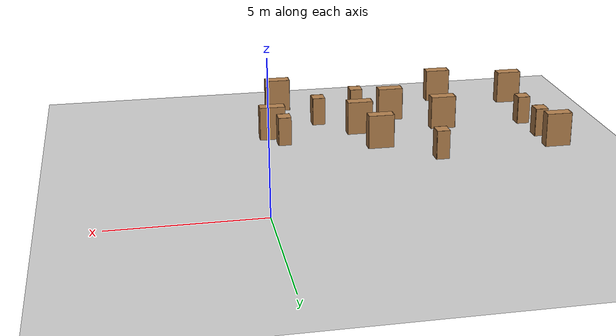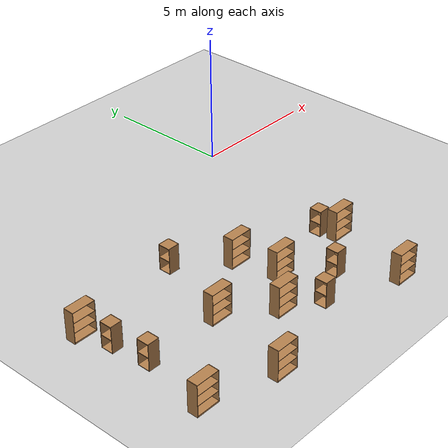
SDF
<sdf version="1.6">
 <world name="default">
  <model name="ground_plane">
   <static>1</static>
   <link name="link">
    <collision name="collision">
     <geometry><plane><normal>0 0 1</normal><size>100 100</size></plane></geometry>
     <surface><friction><ode><mu>100</mu><mu2>50</mu2></ode></friction></surface>
    </collision>
    <visual name="visual">
     <cast_shadows>0</cast_shadows>
     <geometry><plane><normal>0 0 1</normal><size>100 100</size></plane></geometry>
     <material>
      <script><uri>file://media/materials/scripts/gazebo.material</uri><name>Gazebo/Grey</name></script>
     </material>
    </visual>
   </link>
  </model>
  <model name="cabinet_28">
   <static>1</static>
   <link name="cabinet_bottom_plate">
    <inertial>
     <pose>0 0 -1 0 -0 0</pose>
     <inertia><ixx>2.05</ixx><ixy>0</ixy><ixz>0</ixz><iyy>2.05</iyy><iyz>0</iyz><izz>2.05</izz></inertia>
     <mass>25</mass>
    </inertial>
    <collision name="cabinet_bottom_plate_geom">
     <pose>0 0 0.01 0 -0 0</pose>
     <geometry><box><size>0.45 0.45 0.02</size></box></geometry>
    </collision>
    <visual name="cabinet_bottom_plate_geom_visual">
     <pose>0 0 0.01 0 -0 0</pose>
     <geometry><box><size>0.45 0.45 0.02</size></box></geometry>
     <material>
      <script><uri>file://media/materials/scripts/gazebo.material</uri><name>Gazebo/Wood</name></script>
     </material>
    </visual>
    <collision name="cabinet_bottom_plate_geom_cabinet_back_plate">
     <pose>0.235 0 0.51 0 -0 0</pose>
     <geometry><box><size>0.02 0.45 1.02</size></box></geometry>
    </collision>
    <visual name="cabinet_bottom_plate_geom_cabinet_back_plate_visual">
     <pose>0.235 0 0.51 0 -0 0</pose>
     <geometry><box><size>0.02 0.45 1.02</size></box></geometry>
     <material>
      <script><uri>file://media/materials/scripts/gazebo.material</uri><name>Gazebo/Wood</name></script>
     </material>
    </visual>
    <collision name="cabinet_bottom_plate_geom_cabinet_left_plate">
     <pose>0 0.235 0.51 0 -0 0</pose>
     <geometry><box><size>0.45 0.02 1.02</size></box></geometry>
    </collision>
    <visual name="cabinet_bottom_plate_geom_cabinet_left_plate_visual">
     <pose>0 0.235 0.51 0 -0 0</pose>
     <geometry><box><size>0.45 0.02 1.02</size></box></geometry>
     <material>
      <script><uri>file://media/materials/scripts/gazebo.material</uri><name>Gazebo/Wood</name></script>
     </material>
    </visual>
    <collision name="cabinet_bottom_plate_geom_cabinet_middle_plate">
     <pose>0 0 0.51 0 -0 0</pose>
     <geometry><box><size>0.45 0.45 0.02</size></box></geometry>
    </collision>
    <visual name="cabinet_bottom_plate_geom_cabinet_middle_plate_visual">
     <pose>0 0 0.51 0 -0 0</pose>
     <geometry><box><size>0.45 0.45 0.02</size></box></geometry>
     <material>
      <script><uri>file://media/materials/scripts/gazebo.material</uri><name>Gazebo/Wood</name></script>
     </material>
    </visual>
    <collision name="cabinet_bottom_plate_geom_cabinet_right_plate">
     <pose>0 -0.235 0.51 0 -0 0</pose>
     <geometry><box><size>0.45 0.02 1.02</size></box></geometry>
    </collision>
    <visual name="cabinet_bottom_plate_geom_cabinet_right_plate_visual">
     <pose>0 -0.235 0.51 0 -0 0</pose>
     <geometry><box><size>0.45 0.02 1.02</size></box></geometry>
     <material>
      <script><uri>file://media/materials/scripts/gazebo.material</uri><name>Gazebo/Wood</name></script>
     </material>
    </visual>
    <collision name="cabinet_bottom_plate_geom_cabinet_top_plate">
     <pose>0 0 1.01 0 -0 0</pose>
     <geometry><box><size>0.45 0.45 0.02</size></box></geometry>
    </collision>
    <visual name="cabinet_bottom_plate_geom_cabinet_top_plate_visual">
     <pose>0 0 1.01 0 -0 0</pose>
     <geometry><box><size>0.45 0.45 0.02</size></box></geometry>
     <material>
      <script><uri>file://media/materials/scripts/gazebo.material</uri><name>Gazebo/Wood</name></script>
     </material>
    </visual>
   </link>
   <pose>-6.4679 -3.99655 0 0 -0 0</pose>
  </model>
  <model name="cabinet_32">
   <static>1</static>
   <link name="cabinet_bottom_plate">
    <inertial>
     <pose>0 0 -1 0 -0 0</pose>
     <inertia><ixx>2.05</ixx><ixy>0</ixy><ixz>0</ixz><iyy>2.05</iyy><iyz>0</iyz><izz>2.05</izz></inertia>
     <mass>25</mass>
    </inertial>
    <collision name="cabinet_bottom_plate_geom">
     <pose>0 0 0.01 0 -0 0</pose>
     <geometry><box><size>0.45 0.45 0.02</size></box></geometry>
    </collision>
    <visual name="cabinet_bottom_plate_geom_visual">
     <pose>0 0 0.01 0 -0 0</pose>
     <geometry><box><size>0.45 0.45 0.02</size></box></geometry>
     <material>
      <script><uri>file://media/materials/scripts/gazebo.material</uri><name>Gazebo/Wood</name></script>
     </material>
    </visual>
    <collision name="cabinet_bottom_plate_geom_cabinet_back_plate">
     <pose>0.235 0 0.51 0 -0 0</pose>
     <geometry><box><size>0.02 0.45 1.02</size></box></geometry>
    </collision>
    <visual name="cabinet_bottom_plate_geom_cabinet_back_plate_visual">
     <pose>0.235 0 0.51 0 -0 0</pose>
     <geometry><box><size>0.02 0.45 1.02</size></box></geometry>
     <material>
      <script><uri>file://media/materials/scripts/gazebo.material</uri><name>Gazebo/Wood</name></script>
     </material>
    </visual>
    <collision name="cabinet_bottom_plate_geom_cabinet_left_plate">
     <pose>0 0.235 0.51 0 -0 0</pose>
     <geometry><box><size>0.45 0.02 1.02</size></box></geometry>
    </collision>
    <visual name="cabinet_bottom_plate_geom_cabinet_left_plate_visual">
     <pose>0 0.235 0.51 0 -0 0</pose>
     <geometry><box><size>0.45 0.02 1.02</size></box></geometry>
     <material>
      <script><uri>file://media/materials/scripts/gazebo.material</uri><name>Gazebo/Wood</name></script>
     </material>
    </visual>
    <collision name="cabinet_bottom_plate_geom_cabinet_middle_plate">
     <pose>0 0 0.51 0 -0 0</pose>
     <geometry><box><size>0.45 0.45 0.02</size></box></geometry>
    </collision>
    <visual name="cabinet_bottom_plate_geom_cabinet_middle_plate_visual">
     <pose>0 0 0.51 0 -0 0</pose>
     <geometry><box><size>0.45 0.45 0.02</size></box></geometry>
     <material>
      <script><uri>file://media/materials/scripts/gazebo.material</uri><name>Gazebo/Wood</name></script>
     </material>
    </visual>
    <collision name="cabinet_bottom_plate_geom_cabinet_right_plate">
     <pose>0 -0.235 0.51 0 -0 0</pose>
     <geometry><box><size>0.45 0.02 1.02</size></box></geometry>
    </collision>
    <visual name="cabinet_bottom_plate_geom_cabinet_right_plate_visual">
     <pose>0 -0.235 0.51 0 -0 0</pose>
     <geometry><box><size>0.45 0.02 1.02</size></box></geometry>
     <material>
      <script><uri>file://media/materials/scripts/gazebo.material</uri><name>Gazebo/Wood</name></script>
     </material>
    </visual>
    <collision name="cabinet_bottom_plate_geom_cabinet_top_plate">
     <pose>0 0 1.01 0 -0 0</pose>
     <geometry><box><size>0.45 0.45 0.02</size></box></geometry>
    </collision>
    <visual name="cabinet_bottom_plate_geom_cabinet_top_plate_visual">
     <pose>0 0 1.01 0 -0 0</pose>
     <geometry><box><size>0.45 0.45 0.02</size></box></geometry>
     <material>
      <script><uri>file://media/materials/scripts/gazebo.material</uri><name>Gazebo/Wood</name></script>
     </material>
    </visual>
   </link>
   <pose>-1.36728 -6.36946 0 0 -0 0</pose>
  </model>
  <model name="bookshelf_32">
   <static>1</static>
   <link name="link">
    <inertial><mass>1</mass></inertial>
    <collision name="back">
     <pose>0 0.005 0.6 0 -0 0</pose>
     <geometry><box><size>0.9 0.01 1.2</size></box></geometry>
    </collision>
    <visual name="visual1">
     <pose>0 0.005 0.6 0 -0 0</pose>
     <geometry><box><size>0.9 0.01 1.2</size></box></geometry>
     <material>
      <script><uri>file://media/materials/scripts/gazebo.material</uri><name>Gazebo/Wood</name></script>
     </material>
    </visual>
    <collision name="left_side">
     <pose>0.45 -0.195 0.6 0 -0 0</pose>
     <geometry><box><size>0.02 0.4 1.2</size></box></geometry>
    </collision>
    <visual name="visual2">
     <pose>0.45 -0.195 0.6 0 -0 0</pose>
     <geometry><box><size>0.02 0.4 1.2</size></box></geometry>
     <material>
      <script><uri>file://media/materials/scripts/gazebo.material</uri><name>Gazebo/Wood</name></script>
     </material>
    </visual>
    <collision name="right_side">
     <pose>-0.45 -0.195 0.6 0 -0 0</pose>
     <geometry><box><size>0.02 0.4 1.2</size></box></geometry>
    </collision>
    <visual name="visual3">
     <pose>-0.45 -0.195 0.6 0 -0 0</pose>
     <geometry><box><size>0.02 0.4 1.2</size></box></geometry>
     <material>
      <script><uri>file://media/materials/scripts/gazebo.material</uri><name>Gazebo/Wood</name></script>
     </material>
    </visual>
    <collision name="bottom">
     <pose>0 -0.195 0.03 0 -0 0</pose>
     <geometry><box><size>0.88 0.4 0.06</size></box></geometry>
    </collision>
    <visual name="visual4">
     <pose>0 -0.195 0.03 0 -0 0</pose>
     <geometry><box><size>0.88 0.4 0.06</size></box></geometry>
     <material>
      <script><uri>file://media/materials/scripts/gazebo.material</uri><name>Gazebo/Wood</name></script>
     </material>
    </visual>
    <collision name="top">
     <pose>0 -0.195 1.19 0 -0 0</pose>
     <geometry><box><size>0.88 0.4 0.02</size></box></geometry>
    </collision>
    <visual name="visual5">
     <pose>0 -0.195 1.19 0 -0 0</pose>
     <geometry><box><size>0.88 0.4 0.02</size></box></geometry>
     <material>
      <script><uri>file://media/materials/scripts/gazebo.material</uri><name>Gazebo/Wood</name></script>
     </material>
    </visual>
    <collision name="low_shelf">
     <pose>0 -0.195 0.43 0 -0 0</pose>
     <geometry><box><size>0.88 0.4 0.02</size></box></geometry>
    </collision>
    <visual name="visual6">
     <pose>0 -0.195 0.43 0 -0 0</pose>
     <geometry><box><size>0.88 0.4 0.02</size></box></geometry>
     <material>
      <script><uri>file://media/materials/scripts/gazebo.material</uri><name>Gazebo/Wood</name></script>
     </material>
    </visual>
    <collision name="high_shelf">
     <pose>0 -0.195 0.8 0 -0 0</pose>
     <geometry><box><size>0.88 0.4 0.02</size></box></geometry>
    </collision>
    <visual name="visual7">
     <pose>0 -0.195 0.8 0 -0 0</pose>
     <geometry><box><size>0.88 0.4 0.02</size></box></geometry>
     <material>
      <script><uri>file://media/materials/scripts/gazebo.material</uri><name>Gazebo/Wood</name></script>
     </material>
    </visual>
   </link>
   <pose>-4.6365 -5.22484 0 0 -0 0</pose>
  </model>
  <model name="bookshelf_33">
   <static>1</static>
   <link name="link">
    <inertial><mass>1</mass></inertial>
    <collision name="back">
     <pose>0 0.005 0.6 0 -0 0</pose>
     <geometry><box><size>0.9 0.01 1.2</size></box></geometry>
    </collision>
    <visual name="visual1">
     <pose>0 0.005 0.6 0 -0 0</pose>
     <geometry><box><size>0.9 0.01 1.2</size></box></geometry>
     <material>
      <script><uri>file://media/materials/scripts/gazebo.material</uri><name>Gazebo/Wood</name></script>
     </material>
    </visual>
    <collision name="left_side">
     <pose>0.45 -0.195 0.6 0 -0 0</pose>
     <geometry><box><size>0.02 0.4 1.2</size></box></geometry>
    </collision>
    <visual name="visual2">
     <pose>0.45 -0.195 0.6 0 -0 0</pose>
     <geometry><box><size>0.02 0.4 1.2</size></box></geometry>
     <material>
      <script><uri>file://media/materials/scripts/gazebo.material</uri><name>Gazebo/Wood</name></script>
     </material>
    </visual>
    <collision name="right_side">
     <pose>-0.45 -0.195 0.6 0 -0 0</pose>
     <geometry><box><size>0.02 0.4 1.2</size></box></geometry>
    </collision>
    <visual name="visual3">
     <pose>-0.45 -0.195 0.6 0 -0 0</pose>
     <geometry><box><size>0.02 0.4 1.2</size></box></geometry>
     <material>
      <script><uri>file://media/materials/scripts/gazebo.material</uri><name>Gazebo/Wood</name></script>
     </material>
    </visual>
    <collision name="bottom">
     <pose>0 -0.195 0.03 0 -0 0</pose>
     <geometry><box><size>0.88 0.4 0.06</size></box></geometry>
    </collision>
    <visual name="visual4">
     <pose>0 -0.195 0.03 0 -0 0</pose>
     <geometry><box><size>0.88 0.4 0.06</size></box></geometry>
     <material>
      <script><uri>file://media/materials/scripts/gazebo.material</uri><name>Gazebo/Wood</name></script>
     </material>
    </visual>
    <collision name="top">
     <pose>0 -0.195 1.19 0 -0 0</pose>
     <geometry><box><size>0.88 0.4 0.02</size></box></geometry>
    </collision>
    <visual name="visual5">
     <pose>0 -0.195 1.19 0 -0 0</pose>
     <geometry><box><size>0.88 0.4 0.02</size></box></geometry>
     <material>
      <script><uri>file://media/materials/scripts/gazebo.material</uri><name>Gazebo/Wood</name></script>
     </material>
    </visual>
    <collision name="low_shelf">
     <pose>0 -0.195 0.43 0 -0 0</pose>
     <geometry><box><size>0.88 0.4 0.02</size></box></geometry>
    </collision>
    <visual name="visual6">
     <pose>0 -0.195 0.43 0 -0 0</pose>
     <geometry><box><size>0.88 0.4 0.02</size></box></geometry>
     <material>
      <script><uri>file://media/materials/scripts/gazebo.material</uri><name>Gazebo/Wood</name></script>
     </material>
    </visual>
    <collision name="high_shelf">
     <pose>0 -0.195 0.8 0 -0 0</pose>
     <geometry><box><size>0.88 0.4 0.02</size></box></geometry>
    </collision>
    <visual name="visual7">
     <pose>0 -0.195 0.8 0 -0 0</pose>
     <geometry><box><size>0.88 0.4 0.02</size></box></geometry>
     <material>
      <script><uri>file://media/materials/scripts/gazebo.material</uri><name>Gazebo/Wood</name></script>
     </material>
    </visual>
   </link>
   <pose>-7.32868 -6.81235 0 0 -0 0</pose>
  </model>
  <model name="bookshelf_34">
   <static>1</static>
   <link name="link">
    <inertial><mass>1</mass></inertial>
    <collision name="back">
     <pose>0 0.005 0.6 0 -0 0</pose>
     <geometry><box><size>0.9 0.01 1.2</size></box></geometry>
    </collision>
    <visual name="visual1">
     <pose>0 0.005 0.6 0 -0 0</pose>
     <geometry><box><size>0.9 0.01 1.2</size></box></geometry>
     <material>
      <script><uri>file://media/materials/scripts/gazebo.material</uri><name>Gazebo/Wood</name></script>
     </material>
    </visual>
    <collision name="left_side">
     <pose>0.45 -0.195 0.6 0 -0 0</pose>
     <geometry><box><size>0.02 0.4 1.2</size></box></geometry>
    </collision>
    <visual name="visual2">
     <pose>0.45 -0.195 0.6 0 -0 0</pose>
     <geometry><box><size>0.02 0.4 1.2</size></box></geometry>
     <material>
      <script><uri>file://media/materials/scripts/gazebo.material</uri><name>Gazebo/Wood</name></script>
     </material>
    </visual>
    <collision name="right_side">
     <pose>-0.45 -0.195 0.6 0 -0 0</pose>
     <geometry><box><size>0.02 0.4 1.2</size></box></geometry>
    </collision>
    <visual name="visual3">
     <pose>-0.45 -0.195 0.6 0 -0 0</pose>
     <geometry><box><size>0.02 0.4 1.2</size></box></geometry>
     <material>
      <script><uri>file://media/materials/scripts/gazebo.material</uri><name>Gazebo/Wood</name></script>
     </material>
    </visual>
    <collision name="bottom">
     <pose>0 -0.195 0.03 0 -0 0</pose>
     <geometry><box><size>0.88 0.4 0.06</size></box></geometry>
    </collision>
    <visual name="visual4">
     <pose>0 -0.195 0.03 0 -0 0</pose>
     <geometry><box><size>0.88 0.4 0.06</size></box></geometry>
     <material>
      <script><uri>file://media/materials/scripts/gazebo.material</uri><name>Gazebo/Wood</name></script>
     </material>
    </visual>
    <collision name="top">
     <pose>0 -0.195 1.19 0 -0 0</pose>
     <geometry><box><size>0.88 0.4 0.02</size></box></geometry>
    </collision>
    <visual name="visual5">
     <pose>0 -0.195 1.19 0 -0 0</pose>
     <geometry><box><size>0.88 0.4 0.02</size></box></geometry>
     <material>
      <script><uri>file://media/materials/scripts/gazebo.material</uri><name>Gazebo/Wood</name></script>
     </material>
    </visual>
    <collision name="low_shelf">
     <pose>0 -0.195 0.43 0 -0 0</pose>
     <geometry><box><size>0.88 0.4 0.02</size></box></geometry>
    </collision>
    <visual name="visual6">
     <pose>0 -0.195 0.43 0 -0 0</pose>
     <geometry><box><size>0.88 0.4 0.02</size></box></geometry>
     <material>
      <script><uri>file://media/materials/scripts/gazebo.material</uri><name>Gazebo/Wood</name></script>
     </material>
    </visual>
    <collision name="high_shelf">
     <pose>0 -0.195 0.8 0 -0 0</pose>
     <geometry><box><size>0.88 0.4 0.02</size></box></geometry>
    </collision>
    <visual name="visual7">
     <pose>0 -0.195 0.8 0 -0 0</pose>
     <geometry><box><size>0.88 0.4 0.02</size></box></geometry>
     <material>
      <script><uri>file://media/materials/scripts/gazebo.material</uri><name>Gazebo/Wood</name></script>
     </material>
    </visual>
   </link>
   <pose>-5.64832 -8.11821 0 0 -0 0</pose>
  </model>
  <model name="bookshelf_35">
   <static>1</static>
   <link name="link">
    <inertial><mass>1</mass></inertial>
    <collision name="back">
     <pose>0 0.005 0.6 0 -0 0</pose>
     <geometry><box><size>0.9 0.01 1.2</size></box></geometry>
    </collision>
    <visual name="visual1">
     <pose>0 0.005 0.6 0 -0 0</pose>
     <geometry><box><size>0.9 0.01 1.2</size></box></geometry>
     <material>
      <script><uri>file://media/materials/scripts/gazebo.material</uri><name>Gazebo/Wood</name></script>
     </material>
    </visual>
    <collision name="left_side">
     <pose>0.45 -0.195 0.6 0 -0 0</pose>
     <geometry><box><size>0.02 0.4 1.2</size></box></geometry>
    </collision>
    <visual name="visual2">
     <pose>0.45 -0.195 0.6 0 -0 0</pose>
     <geometry><box><size>0.02 0.4 1.2</size></box></geometry>
     <material>
      <script><uri>file://media/materials/scripts/gazebo.material</uri><name>Gazebo/Wood</name></script>
     </material>
    </visual>
    <collision name="right_side">
     <pose>-0.45 -0.195 0.6 0 -0 0</pose>
     <geometry><box><size>0.02 0.4 1.2</size></box></geometry>
    </collision>
    <visual name="visual3">
     <pose>-0.45 -0.195 0.6 0 -0 0</pose>
     <geometry><box><size>0.02 0.4 1.2</size></box></geometry>
     <material>
      <script><uri>file://media/materials/scripts/gazebo.material</uri><name>Gazebo/Wood</name></script>
     </material>
    </visual>
    <collision name="bottom">
     <pose>0 -0.195 0.03 0 -0 0</pose>
     <geometry><box><size>0.88 0.4 0.06</size></box></geometry>
    </collision>
    <visual name="visual4">
     <pose>0 -0.195 0.03 0 -0 0</pose>
     <geometry><box><size>0.88 0.4 0.06</size></box></geometry>
     <material>
      <script><uri>file://media/materials/scripts/gazebo.material</uri><name>Gazebo/Wood</name></script>
     </material>
    </visual>
    <collision name="top">
     <pose>0 -0.195 1.19 0 -0 0</pose>
     <geometry><box><size>0.88 0.4 0.02</size></box></geometry>
    </collision>
    <visual name="visual5">
     <pose>0 -0.195 1.19 0 -0 0</pose>
     <geometry><box><size>0.88 0.4 0.02</size></box></geometry>
     <material>
      <script><uri>file://media/materials/scripts/gazebo.material</uri><name>Gazebo/Wood</name></script>
     </material>
    </visual>
    <collision name="low_shelf">
     <pose>0 -0.195 0.43 0 -0 0</pose>
     <geometry><box><size>0.88 0.4 0.02</size></box></geometry>
    </collision>
    <visual name="visual6">
     <pose>0 -0.195 0.43 0 -0 0</pose>
     <geometry><box><size>0.88 0.4 0.02</size></box></geometry>
     <material>
      <script><uri>file://media/materials/scripts/gazebo.material</uri><name>Gazebo/Wood</name></script>
     </material>
    </visual>
    <collision name="high_shelf">
     <pose>0 -0.195 0.8 0 -0 0</pose>
     <geometry><box><size>0.88 0.4 0.02</size></box></geometry>
    </collision>
    <visual name="visual7">
     <pose>0 -0.195 0.8 0 -0 0</pose>
     <geometry><box><size>0.88 0.4 0.02</size></box></geometry>
     <material>
      <script><uri>file://media/materials/scripts/gazebo.material</uri><name>Gazebo/Wood</name></script>
     </material>
    </visual>
   </link>
   <pose>-4.21516 -6.81116 0 0 -0 0</pose>
  </model>
  <model name="cabinet_33">
   <static>1</static>
   <link name="cabinet_bottom_plate">
    <inertial>
     <pose>0 0 -1 0 -0 0</pose>
     <inertia><ixx>2.05</ixx><ixy>0</ixy><ixz>0</ixz><iyy>2.05</iyy><iyz>0</iyz><izz>2.05</izz></inertia>
     <mass>25</mass>
    </inertial>
    <collision name="cabinet_bottom_plate_geom">
     <pose>0 0 0.01 0 -0 0</pose>
     <geometry><box><size>0.45 0.45 0.02</size></box></geometry>
    </collision>
    <visual name="cabinet_bottom_plate_geom_visual">
     <pose>0 0 0.01 0 -0 0</pose>
     <geometry><box><size>0.45 0.45 0.02</size></box></geometry>
     <material>
      <script><uri>file://media/materials/scripts/gazebo.material</uri><name>Gazebo/Wood</name></script>
     </material>
    </visual>
    <collision name="cabinet_bottom_plate_geom_cabinet_back_plate">
     <pose>0.235 0 0.51 0 -0 0</pose>
     <geometry><box><size>0.02 0.45 1.02</size></box></geometry>
    </collision>
    <visual name="cabinet_bottom_plate_geom_cabinet_back_plate_visual">
     <pose>0.235 0 0.51 0 -0 0</pose>
     <geometry><box><size>0.02 0.45 1.02</size></box></geometry>
     <material>
      <script><uri>file://media/materials/scripts/gazebo.material</uri><name>Gazebo/Wood</name></script>
     </material>
    </visual>
    <collision name="cabinet_bottom_plate_geom_cabinet_left_plate">
     <pose>0 0.235 0.51 0 -0 0</pose>
     <geometry><box><size>0.45 0.02 1.02</size></box></geometry>
    </collision>
    <visual name="cabinet_bottom_plate_geom_cabinet_left_plate_visual">
     <pose>0 0.235 0.51 0 -0 0</pose>
     <geometry><box><size>0.45 0.02 1.02</size></box></geometry>
     <material>
      <script><uri>file://media/materials/scripts/gazebo.material</uri><name>Gazebo/Wood</name></script>
     </material>
    </visual>
    <collision name="cabinet_bottom_plate_geom_cabinet_middle_plate">
     <pose>0 0 0.51 0 -0 0</pose>
     <geometry><box><size>0.45 0.45 0.02</size></box></geometry>
    </collision>
    <visual name="cabinet_bottom_plate_geom_cabinet_middle_plate_visual">
     <pose>0 0 0.51 0 -0 0</pose>
     <geometry><box><size>0.45 0.45 0.02</size></box></geometry>
     <material>
      <script><uri>file://media/materials/scripts/gazebo.material</uri><name>Gazebo/Wood</name></script>
     </material>
    </visual>
    <collision name="cabinet_bottom_plate_geom_cabinet_right_plate">
     <pose>0 -0.235 0.51 0 -0 0</pose>
     <geometry><box><size>0.45 0.02 1.02</size></box></geometry>
    </collision>
    <visual name="cabinet_bottom_plate_geom_cabinet_right_plate_visual">
     <pose>0 -0.235 0.51 0 -0 0</pose>
     <geometry><box><size>0.45 0.02 1.02</size></box></geometry>
     <material>
      <script><uri>file://media/materials/scripts/gazebo.material</uri><name>Gazebo/Wood</name></script>
     </material>
    </visual>
    <collision name="cabinet_bottom_plate_geom_cabinet_top_plate">
     <pose>0 0 1.01 0 -0 0</pose>
     <geometry><box><size>0.45 0.45 0.02</size></box></geometry>
    </collision>
    <visual name="cabinet_bottom_plate_geom_cabinet_top_plate_visual">
     <pose>0 0 1.01 0 -0 0</pose>
     <geometry><box><size>0.45 0.45 0.02</size></box></geometry>
     <material>
      <script><uri>file://media/materials/scripts/gazebo.material</uri><name>Gazebo/Wood</name></script>
     </material>
    </visual>
   </link>
   <pose>-2.9211 -8.30875 0 0 -0 0</pose>
  </model>
  <model name="bookshelf_36">
   <static>1</static>
   <link name="link">
    <inertial><mass>1</mass></inertial>
    <collision name="back">
     <pose>0 0.005 0.6 0 -0 0</pose>
     <geometry><box><size>0.9 0.01 1.2</size></box></geometry>
    </collision>
    <visual name="visual1">
     <pose>0 0.005 0.6 0 -0 0</pose>
     <geometry><box><size>0.9 0.01 1.2</size></box></geometry>
     <material>
      <script><uri>file://media/materials/scripts/gazebo.material</uri><name>Gazebo/Wood</name></script>
     </material>
    </visual>
    <collision name="left_side">
     <pose>0.45 -0.195 0.6 0 -0 0</pose>
     <geometry><box><size>0.02 0.4 1.2</size></box></geometry>
    </collision>
    <visual name="visual2">
     <pose>0.45 -0.195 0.6 0 -0 0</pose>
     <geometry><box><size>0.02 0.4 1.2</size></box></geometry>
     <material>
      <script><uri>file://media/materials/scripts/gazebo.material</uri><name>Gazebo/Wood</name></script>
     </material>
    </visual>
    <collision name="right_side">
     <pose>-0.45 -0.195 0.6 0 -0 0</pose>
     <geometry><box><size>0.02 0.4 1.2</size></box></geometry>
    </collision>
    <visual name="visual3">
     <pose>-0.45 -0.195 0.6 0 -0 0</pose>
     <geometry><box><size>0.02 0.4 1.2</size></box></geometry>
     <material>
      <script><uri>file://media/materials/scripts/gazebo.material</uri><name>Gazebo/Wood</name></script>
     </material>
    </visual>
    <collision name="bottom">
     <pose>0 -0.195 0.03 0 -0 0</pose>
     <geometry><box><size>0.88 0.4 0.06</size></box></geometry>
    </collision>
    <visual name="visual4">
     <pose>0 -0.195 0.03 0 -0 0</pose>
     <geometry><box><size>0.88 0.4 0.06</size></box></geometry>
     <material>
      <script><uri>file://media/materials/scripts/gazebo.material</uri><name>Gazebo/Wood</name></script>
     </material>
    </visual>
    <collision name="top">
     <pose>0 -0.195 1.19 0 -0 0</pose>
     <geometry><box><size>0.88 0.4 0.02</size></box></geometry>
    </collision>
    <visual name="visual5">
     <pose>0 -0.195 1.19 0 -0 0</pose>
     <geometry><box><size>0.88 0.4 0.02</size></box></geometry>
     <material>
      <script><uri>file://media/materials/scripts/gazebo.material</uri><name>Gazebo/Wood</name></script>
     </material>
    </visual>
    <collision name="low_shelf">
     <pose>0 -0.195 0.43 0 -0 0</pose>
     <geometry><box><size>0.88 0.4 0.02</size></box></geometry>
    </collision>
    <visual name="visual6">
     <pose>0 -0.195 0.43 0 -0 0</pose>
     <geometry><box><size>0.88 0.4 0.02</size></box></geometry>
     <material>
      <script><uri>file://media/materials/scripts/gazebo.material</uri><name>Gazebo/Wood</name></script>
     </material>
    </visual>
    <collision name="high_shelf">
     <pose>0 -0.195 0.8 0 -0 0</pose>
     <geometry><box><size>0.88 0.4 0.02</size></box></geometry>
    </collision>
    <visual name="visual7">
     <pose>0 -0.195 0.8 0 -0 0</pose>
     <geometry><box><size>0.88 0.4 0.02</size></box></geometry>
     <material>
      <script><uri>file://media/materials/scripts/gazebo.material</uri><name>Gazebo/Wood</name></script>
     </material>
    </visual>
   </link>
   <pose>-1.02372 -6.82291 0 0 -0 0</pose>
  </model>
  <model name="bookshelf_42">
   <static>1</static>
   <link name="link">
    <inertial><mass>1</mass></inertial>
    <collision name="back">
     <pose>0 0.005 0.6 0 -0 0</pose>
     <geometry><box><size>0.9 0.01 1.2</size></box></geometry>
    </collision>
    <visual name="visual1">
     <pose>0 0.005 0.6 0 -0 0</pose>
     <geometry><box><size>0.9 0.01 1.2</size></box></geometry>
     <material>
      <script><uri>file://media/materials/scripts/gazebo.material</uri><name>Gazebo/Wood</name></script>
     </material>
    </visual>
    <collision name="left_side">
     <pose>0.45 -0.195 0.6 0 -0 0</pose>
     <geometry><box><size>0.02 0.4 1.2</size></box></geometry>
    </collision>
    <visual name="visual2">
     <pose>0.45 -0.195 0.6 0 -0 0</pose>
     <geometry><box><size>0.02 0.4 1.2</size></box></geometry>
     <material>
      <script><uri>file://media/materials/scripts/gazebo.material</uri><name>Gazebo/Wood</name></script>
     </material>
    </visual>
    <collision name="right_side">
     <pose>-0.45 -0.195 0.6 0 -0 0</pose>
     <geometry><box><size>0.02 0.4 1.2</size></box></geometry>
    </collision>
    <visual name="visual3">
     <pose>-0.45 -0.195 0.6 0 -0 0</pose>
     <geometry><box><size>0.02 0.4 1.2</size></box></geometry>
     <material>
      <script><uri>file://media/materials/scripts/gazebo.material</uri><name>Gazebo/Wood</name></script>
     </material>
    </visual>
    <collision name="bottom">
     <pose>0 -0.195 0.03 0 -0 0</pose>
     <geometry><box><size>0.88 0.4 0.06</size></box></geometry>
    </collision>
    <visual name="visual4">
     <pose>0 -0.195 0.03 0 -0 0</pose>
     <geometry><box><size>0.88 0.4 0.06</size></box></geometry>
     <material>
      <script><uri>file://media/materials/scripts/gazebo.material</uri><name>Gazebo/Wood</name></script>
     </material>
    </visual>
    <collision name="top">
     <pose>0 -0.195 1.19 0 -0 0</pose>
     <geometry><box><size>0.88 0.4 0.02</size></box></geometry>
    </collision>
    <visual name="visual5">
     <pose>0 -0.195 1.19 0 -0 0</pose>
     <geometry><box><size>0.88 0.4 0.02</size></box></geometry>
     <material>
      <script><uri>file://media/materials/scripts/gazebo.material</uri><name>Gazebo/Wood</name></script>
     </material>
    </visual>
    <collision name="low_shelf">
     <pose>0 -0.195 0.43 0 -0 0</pose>
     <geometry><box><size>0.88 0.4 0.02</size></box></geometry>
    </collision>
    <visual name="visual6">
     <pose>0 -0.195 0.43 0 -0 0</pose>
     <geometry><box><size>0.88 0.4 0.02</size></box></geometry>
     <material>
      <script><uri>file://media/materials/scripts/gazebo.material</uri><name>Gazebo/Wood</name></script>
     </material>
    </visual>
    <collision name="high_shelf">
     <pose>0 -0.195 0.8 0 -0 0</pose>
     <geometry><box><size>0.88 0.4 0.02</size></box></geometry>
    </collision>
    <visual name="visual7">
     <pose>0 -0.195 0.8 0 -0 0</pose>
     <geometry><box><size>0.88 0.4 0.02</size></box></geometry>
     <material>
      <script><uri>file://media/materials/scripts/gazebo.material</uri><name>Gazebo/Wood</name></script>
     </material>
    </visual>
   </link>
   <pose>-1.6573 -9.96482 0 0 -0 0</pose>
  </model>
  <model name="cabinet_45">
   <static>1</static>
   <link name="cabinet_bottom_plate">
    <inertial>
     <pose>0 0 -1 0 -0 0</pose>
     <inertia><ixx>2.05</ixx><ixy>0</ixy><ixz>0</ixz><iyy>2.05</iyy><iyz>0</iyz><izz>2.05</izz></inertia>
     <mass>25</mass>
    </inertial>
    <collision name="cabinet_bottom_plate_geom">
     <pose>0 0 0.01 0 -0 0</pose>
     <geometry><box><size>0.45 0.45 0.02</size></box></geometry>
    </collision>
    <visual name="cabinet_bottom_plate_geom_visual">
     <pose>0 0 0.01 0 -0 0</pose>
     <geometry><box><size>0.45 0.45 0.02</size></box></geometry>
     <material>
      <script><uri>file://media/materials/scripts/gazebo.material</uri><name>Gazebo/Wood</name></script>
     </material>
    </visual>
    <collision name="cabinet_bottom_plate_geom_cabinet_back_plate">
     <pose>0.235 0 0.51 0 -0 0</pose>
     <geometry><box><size>0.02 0.45 1.02</size></box></geometry>
    </collision>
    <visual name="cabinet_bottom_plate_geom_cabinet_back_plate_visual">
     <pose>0.235 0 0.51 0 -0 0</pose>
     <geometry><box><size>0.02 0.45 1.02</size></box></geometry>
     <material>
      <script><uri>file://media/materials/scripts/gazebo.material</uri><name>Gazebo/Wood</name></script>
     </material>
    </visual>
    <collision name="cabinet_bottom_plate_geom_cabinet_left_plate">
     <pose>0 0.235 0.51 0 -0 0</pose>
     <geometry><box><size>0.45 0.02 1.02</size></box></geometry>
    </collision>
    <visual name="cabinet_bottom_plate_geom_cabinet_left_plate_visual">
     <pose>0 0.235 0.51 0 -0 0</pose>
     <geometry><box><size>0.45 0.02 1.02</size></box></geometry>
     <material>
      <script><uri>file://media/materials/scripts/gazebo.material</uri><name>Gazebo/Wood</name></script>
     </material>
    </visual>
    <collision name="cabinet_bottom_plate_geom_cabinet_middle_plate">
     <pose>0 0 0.51 0 -0 0</pose>
     <geometry><box><size>0.45 0.45 0.02</size></box></geometry>
    </collision>
    <visual name="cabinet_bottom_plate_geom_cabinet_middle_plate_visual">
     <pose>0 0 0.51 0 -0 0</pose>
     <geometry><box><size>0.45 0.45 0.02</size></box></geometry>
     <material>
      <script><uri>file://media/materials/scripts/gazebo.material</uri><name>Gazebo/Wood</name></script>
     </material>
    </visual>
    <collision name="cabinet_bottom_plate_geom_cabinet_right_plate">
     <pose>0 -0.235 0.51 0 -0 0</pose>
     <geometry><box><size>0.45 0.02 1.02</size></box></geometry>
    </collision>
    <visual name="cabinet_bottom_plate_geom_cabinet_right_plate_visual">
     <pose>0 -0.235 0.51 0 -0 0</pose>
     <geometry><box><size>0.45 0.02 1.02</size></box></geometry>
     <material>
      <script><uri>file://media/materials/scripts/gazebo.material</uri><name>Gazebo/Wood</name></script>
     </material>
    </visual>
    <collision name="cabinet_bottom_plate_geom_cabinet_top_plate">
     <pose>0 0 1.01 0 -0 0</pose>
     <geometry><box><size>0.45 0.45 0.02</size></box></geometry>
    </collision>
    <visual name="cabinet_bottom_plate_geom_cabinet_top_plate_visual">
     <pose>0 0 1.01 0 -0 0</pose>
     <geometry><box><size>0.45 0.45 0.02</size></box></geometry>
     <material>
      <script><uri>file://media/materials/scripts/gazebo.material</uri><name>Gazebo/Wood</name></script>
     </material>
    </visual>
   </link>
   <pose>-4.48885 -9.07651 0 0 -0 0</pose>
  </model>
  <model name="bookshelf_43">
   <static>1</static>
   <link name="link">
    <inertial><mass>1</mass></inertial>
    <collision name="back">
     <pose>0 0.005 0.6 0 -0 0</pose>
     <geometry><box><size>0.9 0.01 1.2</size></box></geometry>
    </collision>
    <visual name="visual1">
     <pose>0 0.005 0.6 0 -0 0</pose>
     <geometry><box><size>0.9 0.01 1.2</size></box></geometry>
     <material>
      <script><uri>file://media/materials/scripts/gazebo.material</uri><name>Gazebo/Wood</name></script>
     </material>
    </visual>
    <collision name="left_side">
     <pose>0.45 -0.195 0.6 0 -0 0</pose>
     <geometry><box><size>0.02 0.4 1.2</size></box></geometry>
    </collision>
    <visual name="visual2">
     <pose>0.45 -0.195 0.6 0 -0 0</pose>
     <geometry><box><size>0.02 0.4 1.2</size></box></geometry>
     <material>
      <script><uri>file://media/materials/scripts/gazebo.material</uri><name>Gazebo/Wood</name></script>
     </material>
    </visual>
    <collision name="right_side">
     <pose>-0.45 -0.195 0.6 0 -0 0</pose>
     <geometry><box><size>0.02 0.4 1.2</size></box></geometry>
    </collision>
    <visual name="visual3">
     <pose>-0.45 -0.195 0.6 0 -0 0</pose>
     <geometry><box><size>0.02 0.4 1.2</size></box></geometry>
     <material>
      <script><uri>file://media/materials/scripts/gazebo.material</uri><name>Gazebo/Wood</name></script>
     </material>
    </visual>
    <collision name="bottom">
     <pose>0 -0.195 0.03 0 -0 0</pose>
     <geometry><box><size>0.88 0.4 0.06</size></box></geometry>
    </collision>
    <visual name="visual4">
     <pose>0 -0.195 0.03 0 -0 0</pose>
     <geometry><box><size>0.88 0.4 0.06</size></box></geometry>
     <material>
      <script><uri>file://media/materials/scripts/gazebo.material</uri><name>Gazebo/Wood</name></script>
     </material>
    </visual>
    <collision name="top">
     <pose>0 -0.195 1.19 0 -0 0</pose>
     <geometry><box><size>0.88 0.4 0.02</size></box></geometry>
    </collision>
    <visual name="visual5">
     <pose>0 -0.195 1.19 0 -0 0</pose>
     <geometry><box><size>0.88 0.4 0.02</size></box></geometry>
     <material>
      <script><uri>file://media/materials/scripts/gazebo.material</uri><name>Gazebo/Wood</name></script>
     </material>
    </visual>
    <collision name="low_shelf">
     <pose>0 -0.195 0.43 0 -0 0</pose>
     <geometry><box><size>0.88 0.4 0.02</size></box></geometry>
    </collision>
    <visual name="visual6">
     <pose>0 -0.195 0.43 0 -0 0</pose>
     <geometry><box><size>0.88 0.4 0.02</size></box></geometry>
     <material>
      <script><uri>file://media/materials/scripts/gazebo.material</uri><name>Gazebo/Wood</name></script>
     </material>
    </visual>
    <collision name="high_shelf">
     <pose>0 -0.195 0.8 0 -0 0</pose>
     <geometry><box><size>0.88 0.4 0.02</size></box></geometry>
    </collision>
    <visual name="visual7">
     <pose>0 -0.195 0.8 0 -0 0</pose>
     <geometry><box><size>0.88 0.4 0.02</size></box></geometry>
     <material>
      <script><uri>file://media/materials/scripts/gazebo.material</uri><name>Gazebo/Wood</name></script>
     </material>
    </visual>
   </link>
   <pose>-8.00921 -10.0599 0 0 -0 0</pose>
  </model>
  <model name="bookshelf_44">
   <static>1</static>
   <link name="link">
    <inertial><mass>1</mass></inertial>
    <collision name="back">
     <pose>0 0.005 0.6 0 -0 0</pose>
     <geometry><box><size>0.9 0.01 1.2</size></box></geometry>
    </collision>
    <visual name="visual1">
     <pose>0 0.005 0.6 0 -0 0</pose>
     <geometry><box><size>0.9 0.01 1.2</size></box></geometry>
     <material>
      <script><uri>file://media/materials/scripts/gazebo.material</uri><name>Gazebo/Wood</name></script>
     </material>
    </visual>
    <collision name="left_side">
     <pose>0.45 -0.195 0.6 0 -0 0</pose>
     <geometry><box><size>0.02 0.4 1.2</size></box></geometry>
    </collision>
    <visual name="visual2">
     <pose>0.45 -0.195 0.6 0 -0 0</pose>
     <geometry><box><size>0.02 0.4 1.2</size></box></geometry>
     <material>
      <script><uri>file://media/materials/scripts/gazebo.material</uri><name>Gazebo/Wood</name></script>
     </material>
    </visual>
    <collision name="right_side">
     <pose>-0.45 -0.195 0.6 0 -0 0</pose>
     <geometry><box><size>0.02 0.4 1.2</size></box></geometry>
    </collision>
    <visual name="visual3">
     <pose>-0.45 -0.195 0.6 0 -0 0</pose>
     <geometry><box><size>0.02 0.4 1.2</size></box></geometry>
     <material>
      <script><uri>file://media/materials/scripts/gazebo.material</uri><name>Gazebo/Wood</name></script>
     </material>
    </visual>
    <collision name="bottom">
     <pose>0 -0.195 0.03 0 -0 0</pose>
     <geometry><box><size>0.88 0.4 0.06</size></box></geometry>
    </collision>
    <visual name="visual4">
     <pose>0 -0.195 0.03 0 -0 0</pose>
     <geometry><box><size>0.88 0.4 0.06</size></box></geometry>
     <material>
      <script><uri>file://media/materials/scripts/gazebo.material</uri><name>Gazebo/Wood</name></script>
     </material>
    </visual>
    <collision name="top">
     <pose>0 -0.195 1.19 0 -0 0</pose>
     <geometry><box><size>0.88 0.4 0.02</size></box></geometry>
    </collision>
    <visual name="visual5">
     <pose>0 -0.195 1.19 0 -0 0</pose>
     <geometry><box><size>0.88 0.4 0.02</size></box></geometry>
     <material>
      <script><uri>file://media/materials/scripts/gazebo.material</uri><name>Gazebo/Wood</name></script>
     </material>
    </visual>
    <collision name="low_shelf">
     <pose>0 -0.195 0.43 0 -0 0</pose>
     <geometry><box><size>0.88 0.4 0.02</size></box></geometry>
    </collision>
    <visual name="visual6">
     <pose>0 -0.195 0.43 0 -0 0</pose>
     <geometry><box><size>0.88 0.4 0.02</size></box></geometry>
     <material>
      <script><uri>file://media/materials/scripts/gazebo.material</uri><name>Gazebo/Wood</name></script>
     </material>
    </visual>
    <collision name="high_shelf">
     <pose>0 -0.195 0.8 0 -0 0</pose>
     <geometry><box><size>0.88 0.4 0.02</size></box></geometry>
    </collision>
    <visual name="visual7">
     <pose>0 -0.195 0.8 0 -0 0</pose>
     <geometry><box><size>0.88 0.4 0.02</size></box></geometry>
     <material>
      <script><uri>file://media/materials/scripts/gazebo.material</uri><name>Gazebo/Wood</name></script>
     </material>
    </visual>
   </link>
   <pose>-10.6793 -9.31611 0 0 -0 0</pose>
  </model>
  <model name="bookshelf_45">
   <static>1</static>
   <link name="link">
    <inertial><mass>1</mass></inertial>
    <collision name="back">
     <pose>0 0.005 0.6 0 -0 0</pose>
     <geometry><box><size>0.9 0.01 1.2</size></box></geometry>
    </collision>
    <visual name="visual1">
     <pose>0 0.005 0.6 0 -0 0</pose>
     <geometry><box><size>0.9 0.01 1.2</size></box></geometry>
     <material>
      <script><uri>file://media/materials/scripts/gazebo.material</uri><name>Gazebo/Wood</name></script>
     </material>
    </visual>
    <collision name="left_side">
     <pose>0.45 -0.195 0.6 0 -0 0</pose>
     <geometry><box><size>0.02 0.4 1.2</size></box></geometry>
    </collision>
    <visual name="visual2">
     <pose>0.45 -0.195 0.6 0 -0 0</pose>
     <geometry><box><size>0.02 0.4 1.2</size></box></geometry>
     <material>
      <script><uri>file://media/materials/scripts/gazebo.material</uri><name>Gazebo/Wood</name></script>
     </material>
    </visual>
    <collision name="right_side">
     <pose>-0.45 -0.195 0.6 0 -0 0</pose>
     <geometry><box><size>0.02 0.4 1.2</size></box></geometry>
    </collision>
    <visual name="visual3">
     <pose>-0.45 -0.195 0.6 0 -0 0</pose>
     <geometry><box><size>0.02 0.4 1.2</size></box></geometry>
     <material>
      <script><uri>file://media/materials/scripts/gazebo.material</uri><name>Gazebo/Wood</name></script>
     </material>
    </visual>
    <collision name="bottom">
     <pose>0 -0.195 0.03 0 -0 0</pose>
     <geometry><box><size>0.88 0.4 0.06</size></box></geometry>
    </collision>
    <visual name="visual4">
     <pose>0 -0.195 0.03 0 -0 0</pose>
     <geometry><box><size>0.88 0.4 0.06</size></box></geometry>
     <material>
      <script><uri>file://media/materials/scripts/gazebo.material</uri><name>Gazebo/Wood</name></script>
     </material>
    </visual>
    <collision name="top">
     <pose>0 -0.195 1.19 0 -0 0</pose>
     <geometry><box><size>0.88 0.4 0.02</size></box></geometry>
    </collision>
    <visual name="visual5">
     <pose>0 -0.195 1.19 0 -0 0</pose>
     <geometry><box><size>0.88 0.4 0.02</size></box></geometry>
     <material>
      <script><uri>file://media/materials/scripts/gazebo.material</uri><name>Gazebo/Wood</name></script>
     </material>
    </visual>
    <collision name="low_shelf">
     <pose>0 -0.195 0.43 0 -0 0</pose>
     <geometry><box><size>0.88 0.4 0.02</size></box></geometry>
    </collision>
    <visual name="visual6">
     <pose>0 -0.195 0.43 0 -0 0</pose>
     <geometry><box><size>0.88 0.4 0.02</size></box></geometry>
     <material>
      <script><uri>file://media/materials/scripts/gazebo.material</uri><name>Gazebo/Wood</name></script>
     </material>
    </visual>
    <collision name="high_shelf">
     <pose>0 -0.195 0.8 0 -0 0</pose>
     <geometry><box><size>0.88 0.4 0.02</size></box></geometry>
    </collision>
    <visual name="visual7">
     <pose>0 -0.195 0.8 0 -0 0</pose>
     <geometry><box><size>0.88 0.4 0.02</size></box></geometry>
     <material>
      <script><uri>file://media/materials/scripts/gazebo.material</uri><name>Gazebo/Wood</name></script>
     </material>
    </visual>
   </link>
   <pose>-10.7999 -4.2194 0 0 -0 0</pose>
  </model>
  <model name="cabinet_47">
   <static>1</static>
   <link name="cabinet_bottom_plate">
    <inertial>
     <pose>0 0 -1 0 -0 0</pose>
     <inertia><ixx>2.05</ixx><ixy>0</ixy><ixz>0</ixz><iyy>2.05</iyy><iyz>0</iyz><izz>2.05</izz></inertia>
     <mass>25</mass>
    </inertial>
    <collision name="cabinet_bottom_plate_geom">
     <pose>0 0 0.01 0 -0 0</pose>
     <geometry><box><size>0.45 0.45 0.02</size></box></geometry>
    </collision>
    <visual name="cabinet_bottom_plate_geom_visual">
     <pose>0 0 0.01 0 -0 0</pose>
     <geometry><box><size>0.45 0.45 0.02</size></box></geometry>
     <material>
      <script><uri>file://media/materials/scripts/gazebo.material</uri><name>Gazebo/Wood</name></script>
     </material>
    </visual>
    <collision name="cabinet_bottom_plate_geom_cabinet_back_plate">
     <pose>0.235 0 0.51 0 -0 0</pose>
     <geometry><box><size>0.02 0.45 1.02</size></box></geometry>
    </collision>
    <visual name="cabinet_bottom_plate_geom_cabinet_back_plate_visual">
     <pose>0.235 0 0.51 0 -0 0</pose>
     <geometry><box><size>0.02 0.45 1.02</size></box></geometry>
     <material>
      <script><uri>file://media/materials/scripts/gazebo.material</uri><name>Gazebo/Wood</name></script>
     </material>
    </visual>
    <collision name="cabinet_bottom_plate_geom_cabinet_left_plate">
     <pose>0 0.235 0.51 0 -0 0</pose>
     <geometry><box><size>0.45 0.02 1.02</size></box></geometry>
    </collision>
    <visual name="cabinet_bottom_plate_geom_cabinet_left_plate_visual">
     <pose>0 0.235 0.51 0 -0 0</pose>
     <geometry><box><size>0.45 0.02 1.02</size></box></geometry>
     <material>
      <script><uri>file://media/materials/scripts/gazebo.material</uri><name>Gazebo/Wood</name></script>
     </material>
    </visual>
    <collision name="cabinet_bottom_plate_geom_cabinet_middle_plate">
     <pose>0 0 0.51 0 -0 0</pose>
     <geometry><box><size>0.45 0.45 0.02</size></box></geometry>
    </collision>
    <visual name="cabinet_bottom_plate_geom_cabinet_middle_plate_visual">
     <pose>0 0 0.51 0 -0 0</pose>
     <geometry><box><size>0.45 0.45 0.02</size></box></geometry>
     <material>
      <script><uri>file://media/materials/scripts/gazebo.material</uri><name>Gazebo/Wood</name></script>
     </material>
    </visual>
    <collision name="cabinet_bottom_plate_geom_cabinet_right_plate">
     <pose>0 -0.235 0.51 0 -0 0</pose>
     <geometry><box><size>0.45 0.02 1.02</size></box></geometry>
    </collision>
    <visual name="cabinet_bottom_plate_geom_cabinet_right_plate_visual">
     <pose>0 -0.235 0.51 0 -0 0</pose>
     <geometry><box><size>0.45 0.02 1.02</size></box></geometry>
     <material>
      <script><uri>file://media/materials/scripts/gazebo.material</uri><name>Gazebo/Wood</name></script>
     </material>
    </visual>
    <collision name="cabinet_bottom_plate_geom_cabinet_top_plate">
     <pose>0 0 1.01 0 -0 0</pose>
     <geometry><box><size>0.45 0.45 0.02</size></box></geometry>
    </collision>
    <visual name="cabinet_bottom_plate_geom_cabinet_top_plate_visual">
     <pose>0 0 1.01 0 -0 0</pose>
     <geometry><box><size>0.45 0.45 0.02</size></box></geometry>
     <material>
      <script><uri>file://media/materials/scripts/gazebo.material</uri><name>Gazebo/Wood</name></script>
     </material>
    </visual>
   </link>
   <pose>-10.5762 -5.56776 0 0 -0 0</pose>
  </model>
  <model name="cabinet_48">
   <static>1</static>
   <link name="cabinet_bottom_plate">
    <inertial>
     <pose>0 0 -1 0 -0 0</pose>
     <inertia><ixx>2.05</ixx><ixy>0</ixy><ixz>0</ixz><iyy>2.05</iyy><iyz>0</iyz><izz>2.05</izz></inertia>
     <mass>25</mass>
    </inertial>
    <collision name="cabinet_bottom_plate_geom">
     <pose>0 0 0.01 0 -0 0</pose>
     <geometry><box><size>0.45 0.45 0.02</size></box></geometry>
    </collision>
    <visual name="cabinet_bottom_plate_geom_visual">
     <pose>0 0 0.01 0 -0 0</pose>
     <geometry><box><size>0.45 0.45 0.02</size></box></geometry>
     <material>
      <script><uri>file://media/materials/scripts/gazebo.material</uri><name>Gazebo/Wood</name></script>
     </material>
    </visual>
    <collision name="cabinet_bottom_plate_geom_cabinet_back_plate">
     <pose>0.235 0 0.51 0 -0 0</pose>
     <geometry><box><size>0.02 0.45 1.02</size></box></geometry>
    </collision>
    <visual name="cabinet_bottom_plate_geom_cabinet_back_plate_visual">
     <pose>0.235 0 0.51 0 -0 0</pose>
     <geometry><box><size>0.02 0.45 1.02</size></box></geometry>
     <material>
      <script><uri>file://media/materials/scripts/gazebo.material</uri><name>Gazebo/Wood</name></script>
     </material>
    </visual>
    <collision name="cabinet_bottom_plate_geom_cabinet_left_plate">
     <pose>0 0.235 0.51 0 -0 0</pose>
     <geometry><box><size>0.45 0.02 1.02</size></box></geometry>
    </collision>
    <visual name="cabinet_bottom_plate_geom_cabinet_left_plate_visual">
     <pose>0 0.235 0.51 0 -0 0</pose>
     <geometry><box><size>0.45 0.02 1.02</size></box></geometry>
     <material>
      <script><uri>file://media/materials/scripts/gazebo.material</uri><name>Gazebo/Wood</name></script>
     </material>
    </visual>
    <collision name="cabinet_bottom_plate_geom_cabinet_middle_plate">
     <pose>0 0 0.51 0 -0 0</pose>
     <geometry><box><size>0.45 0.45 0.02</size></box></geometry>
    </collision>
    <visual name="cabinet_bottom_plate_geom_cabinet_middle_plate_visual">
     <pose>0 0 0.51 0 -0 0</pose>
     <geometry><box><size>0.45 0.45 0.02</size></box></geometry>
     <material>
      <script><uri>file://media/materials/scripts/gazebo.material</uri><name>Gazebo/Wood</name></script>
     </material>
    </visual>
    <collision name="cabinet_bottom_plate_geom_cabinet_right_plate">
     <pose>0 -0.235 0.51 0 -0 0</pose>
     <geometry><box><size>0.45 0.02 1.02</size></box></geometry>
    </collision>
    <visual name="cabinet_bottom_plate_geom_cabinet_right_plate_visual">
     <pose>0 -0.235 0.51 0 -0 0</pose>
     <geometry><box><size>0.45 0.02 1.02</size></box></geometry>
     <material>
      <script><uri>file://media/materials/scripts/gazebo.material</uri><name>Gazebo/Wood</name></script>
     </material>
    </visual>
    <collision name="cabinet_bottom_plate_geom_cabinet_top_plate">
     <pose>0 0 1.01 0 -0 0</pose>
     <geometry><box><size>0.45 0.45 0.02</size></box></geometry>
    </collision>
    <visual name="cabinet_bottom_plate_geom_cabinet_top_plate_visual">
     <pose>0 0 1.01 0 -0 0</pose>
     <geometry><box><size>0.45 0.45 0.02</size></box></geometry>
     <material>
      <script><uri>file://media/materials/scripts/gazebo.material</uri><name>Gazebo/Wood</name></script>
     </material>
    </visual>
   </link>
   <pose>-10.409 -6.99855 0 0 -0 0</pose>
  </model>
 </world>
</sdf>
